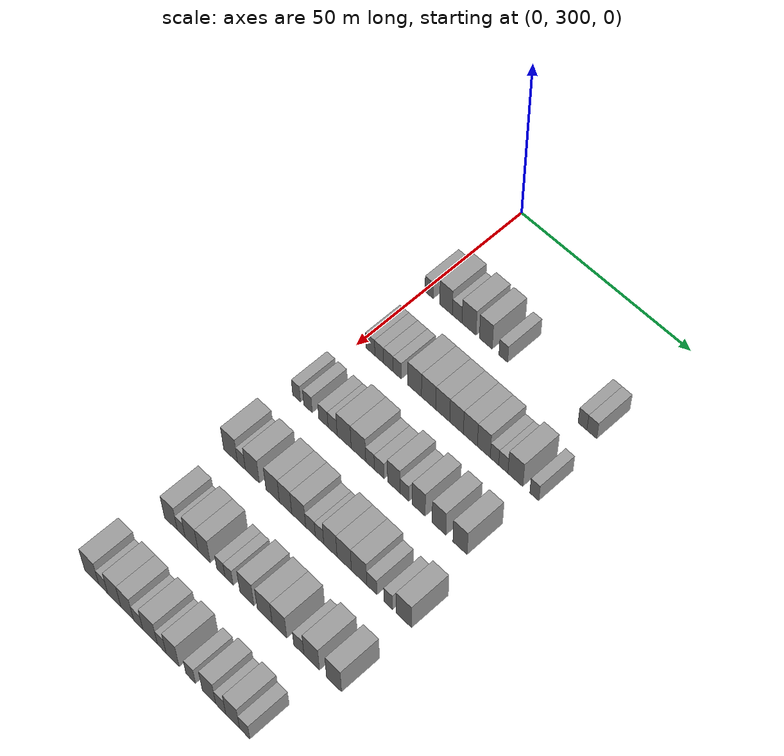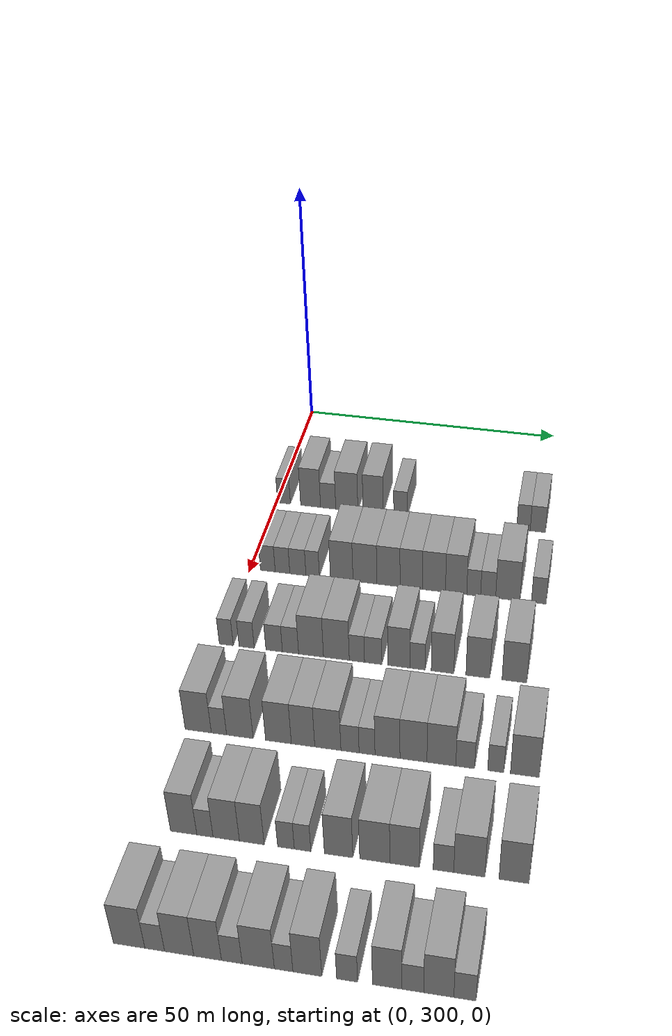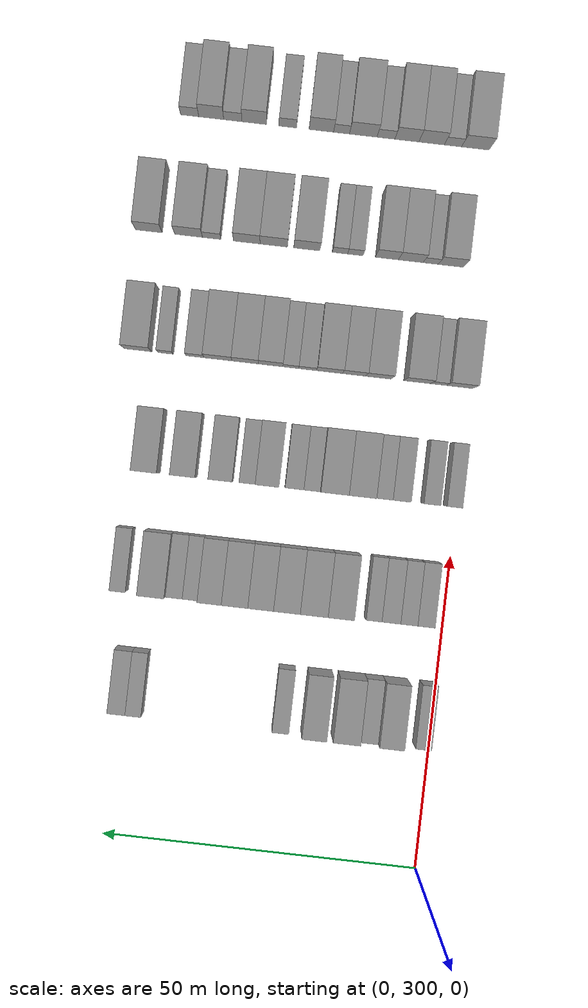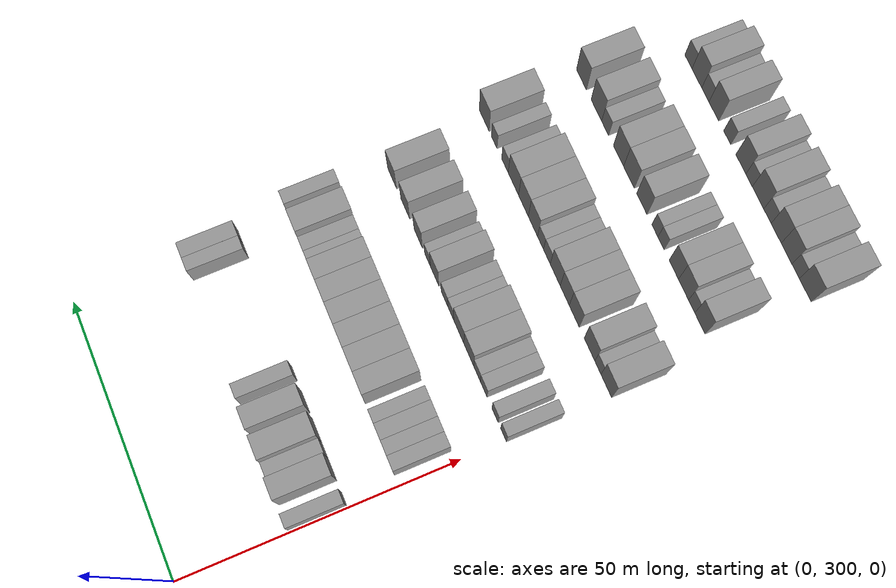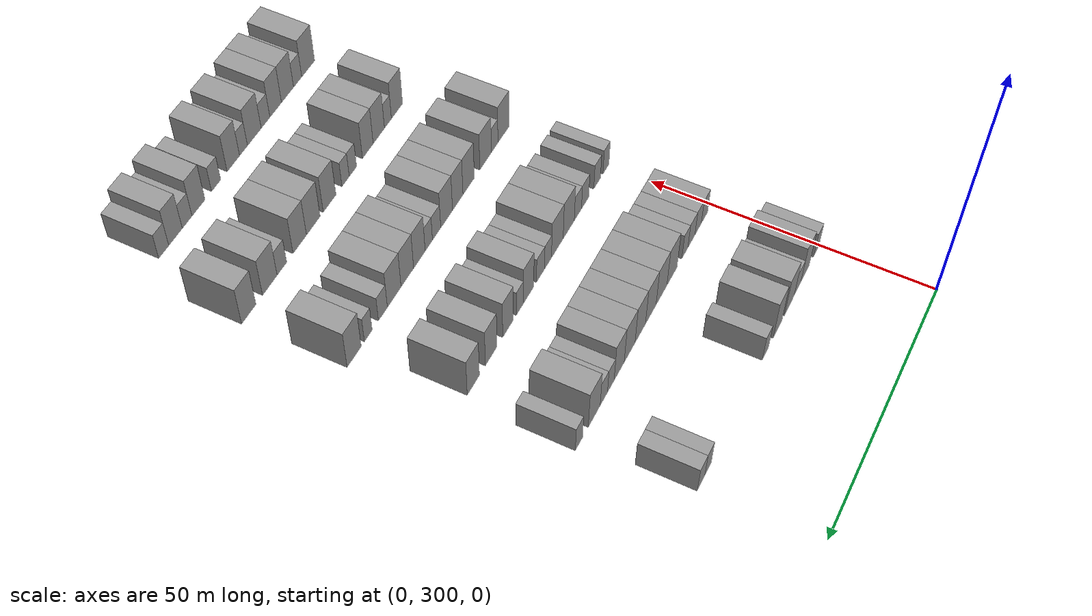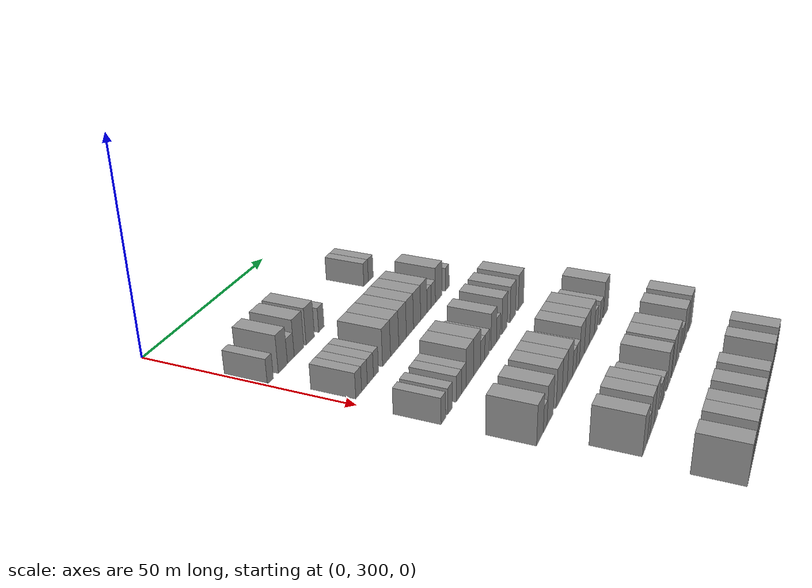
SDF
<sdf version="1.6">
 <world name="default">
  <model name="building_169">
   <static>1</static>
   <pose>25.0000 301.4806 0 0.000000 0.000000 0.000000</pose>
   <link name="link">
    <pose>0 0 3.00 0 0 0</pose>
    <collision name="collision"><geometry><box><size>10.0000 2.4826 6.0000</size></box></geometry></collision>
    <visual name="visual">
     <cast_shadows>0</cast_shadows>
     <geometry><box><size>10.0000 2.4826 6.0000</size></box></geometry>
     <material>
      <script>
       <uri>model://grey_wall/materials/scripts</uri>
       <uri>model://grey_wall/materials/textures</uri>
       <name>vrc/grey_wall</name>
      </script>
     </material>
    </visual>
   </link>
  </model>
  <model name="building_170">
   <static>1</static>
   <pose>25.0000 306.6456 0 0.000000 0.000000 0.000000</pose>
   <link name="link">
    <pose>0 0 4.50 0 0 0</pose>
    <collision name="collision"><geometry><box><size>10.0000 3.8474 9.0000</size></box></geometry></collision>
    <visual name="visual">
     <cast_shadows>0</cast_shadows>
     <geometry><box><size>10.0000 3.8474 9.0000</size></box></geometry>
     <material>
      <script>
       <uri>model://grey_wall/materials/scripts</uri>
       <uri>model://grey_wall/materials/textures</uri>
       <name>vrc/grey_wall</name>
      </script>
     </material>
    </visual>
   </link>
  </model>
  <model name="building_171">
   <static>1</static>
   <pose>25.0000 310.0331 0 0.000000 0.000000 0.000000</pose>
   <link name="link">
    <pose>0 0 3.00 0 0 0</pose>
    <collision name="collision"><geometry><box><size>10.0000 2.9275 6.0000</size></box></geometry></collision>
    <visual name="visual">
     <cast_shadows>0</cast_shadows>
     <geometry><box><size>10.0000 2.9275 6.0000</size></box></geometry>
     <material>
      <script>
       <uri>model://grey_wall/materials/scripts</uri>
       <uri>model://grey_wall/materials/textures</uri>
       <name>vrc/grey_wall</name>
      </script>
     </material>
    </visual>
   </link>
  </model>
  <model name="building_172">
   <static>1</static>
   <pose>25.0000 313.6250 0 0.000000 0.000000 0.000000</pose>
   <link name="link">
    <pose>0 0 4.50 0 0 0</pose>
    <collision name="collision"><geometry><box><size>10.0000 4.2563 9.0000</size></box></geometry></collision>
    <visual name="visual">
     <cast_shadows>0</cast_shadows>
     <geometry><box><size>10.0000 4.2563 9.0000</size></box></geometry>
     <material>
      <script>
       <uri>model://grey_wall/materials/scripts</uri>
       <uri>model://grey_wall/materials/textures</uri>
       <name>vrc/grey_wall</name>
      </script>
     </material>
    </visual>
   </link>
  </model>
  <model name="building_173">
   <static>1</static>
   <pose>25.0000 318.6779 0 0.000000 0.000000 0.000000</pose>
   <link name="link">
    <pose>0 0 4.50 0 0 0</pose>
    <collision name="collision"><geometry><box><size>10.0000 3.8495 9.0000</size></box></geometry></collision>
    <visual name="visual">
     <cast_shadows>0</cast_shadows>
     <geometry><box><size>10.0000 3.8495 9.0000</size></box></geometry>
     <material>
      <script>
       <uri>model://grey_wall/materials/scripts</uri>
       <uri>model://grey_wall/materials/textures</uri>
       <name>vrc/grey_wall</name>
      </script>
     </material>
    </visual>
   </link>
  </model>
  <model name="building_174">
   <static>1</static>
   <pose>25.0000 323.9062 0 0.000000 0.000000 0.000000</pose>
   <link name="link">
    <pose>0 0 3.00 0 0 0</pose>
    <collision name="collision"><geometry><box><size>10.0000 2.6072 6.0000</size></box></geometry></collision>
    <visual name="visual">
     <cast_shadows>0</cast_shadows>
     <geometry><box><size>10.0000 2.6072 6.0000</size></box></geometry>
     <material>
      <script>
       <uri>model://grey_wall/materials/scripts</uri>
       <uri>model://grey_wall/materials/textures</uri>
       <name>vrc/grey_wall</name>
      </script>
     </material>
    </visual>
   </link>
  </model>
  <model name="building_175">
   <static>1</static>
   <pose>25.0000 346.9584 0 0.000000 0.000000 0.000000</pose>
   <link name="link">
    <pose>0 0 3.00 0 0 0</pose>
    <collision name="collision"><geometry><box><size>10.0000 2.4990 6.0000</size></box></geometry></collision>
    <visual name="visual">
     <cast_shadows>0</cast_shadows>
     <geometry><box><size>10.0000 2.4990 6.0000</size></box></geometry>
     <material>
      <script>
       <uri>model://grey_wall/materials/scripts</uri>
       <uri>model://grey_wall/materials/textures</uri>
       <name>vrc/grey_wall</name>
      </script>
     </material>
    </visual>
   </link>
  </model>
  <model name="building_176">
   <static>1</static>
   <pose>25.0000 349.6196 0 0.000000 0.000000 0.000000</pose>
   <link name="link">
    <pose>0 0 3.00 0 0 0</pose>
    <collision name="collision"><geometry><box><size>10.0000 2.8233 6.0000</size></box></geometry></collision>
    <visual name="visual">
     <cast_shadows>0</cast_shadows>
     <geometry><box><size>10.0000 2.8233 6.0000</size></box></geometry>
     <material>
      <script>
       <uri>model://grey_wall/materials/scripts</uri>
       <uri>model://grey_wall/materials/textures</uri>
       <name>vrc/grey_wall</name>
      </script>
     </material>
    </visual>
   </link>
  </model>
  <model name="building_341">
   <static>1</static>
   <pose>44.0000 303.2255 0 0.000000 0.000000 0.000000</pose>
   <link name="link">
    <pose>0 0 3.00 0 0 0</pose>
    <collision name="collision"><geometry><box><size>10.0000 2.7075 6.0000</size></box></geometry></collision>
    <visual name="visual">
     <cast_shadows>0</cast_shadows>
     <geometry><box><size>10.0000 2.7075 6.0000</size></box></geometry>
     <material>
      <script>
       <uri>model://grey_wall/materials/scripts</uri>
       <uri>model://grey_wall/materials/textures</uri>
       <name>vrc/grey_wall</name>
      </script>
     </material>
    </visual>
   </link>
  </model>
  <model name="building_342">
   <static>1</static>
   <pose>44.0000 305.9161 0 0.000000 0.000000 0.000000</pose>
   <link name="link">
    <pose>0 0 3.00 0 0 0</pose>
    <collision name="collision"><geometry><box><size>10.0000 2.6736 6.0000</size></box></geometry></collision>
    <visual name="visual">
     <cast_shadows>0</cast_shadows>
     <geometry><box><size>10.0000 2.6736 6.0000</size></box></geometry>
     <material>
      <script>
       <uri>model://grey_wall/materials/scripts</uri>
       <uri>model://grey_wall/materials/textures</uri>
       <name>vrc/grey_wall</name>
      </script>
     </material>
    </visual>
   </link>
  </model>
  <model name="building_343">
   <static>1</static>
   <pose>44.0000 308.7205 0 0.000000 0.000000 0.000000</pose>
   <link name="link">
    <pose>0 0 3.00 0 0 0</pose>
    <collision name="collision"><geometry><box><size>10.0000 2.9352 6.0000</size></box></geometry></collision>
    <visual name="visual">
     <cast_shadows>0</cast_shadows>
     <geometry><box><size>10.0000 2.9352 6.0000</size></box></geometry>
     <material>
      <script>
       <uri>model://grey_wall/materials/scripts</uri>
       <uri>model://grey_wall/materials/textures</uri>
       <name>vrc/grey_wall</name>
      </script>
     </material>
    </visual>
   </link>
  </model>
  <model name="building_344">
   <static>1</static>
   <pose>44.0000 311.4164 0 0.000000 0.000000 0.000000</pose>
   <link name="link">
    <pose>0 0 3.00 0 0 0</pose>
    <collision name="collision"><geometry><box><size>10.0000 2.4567 6.0000</size></box></geometry></collision>
    <visual name="visual">
     <cast_shadows>0</cast_shadows>
     <geometry><box><size>10.0000 2.4567 6.0000</size></box></geometry>
     <material>
      <script>
       <uri>model://grey_wall/materials/scripts</uri>
       <uri>model://grey_wall/materials/textures</uri>
       <name>vrc/grey_wall</name>
      </script>
     </material>
    </visual>
   </link>
  </model>
  <model name="building_345">
   <static>1</static>
   <pose>44.0000 316.6854 0 0.000000 0.000000 0.000000</pose>
   <link name="link">
    <pose>0 0 4.50 0 0 0</pose>
    <collision name="collision"><geometry><box><size>10.0000 4.0813 9.0000</size></box></geometry></collision>
    <visual name="visual">
     <cast_shadows>0</cast_shadows>
     <geometry><box><size>10.0000 4.0813 9.0000</size></box></geometry>
     <material>
      <script>
       <uri>model://grey_wall/materials/scripts</uri>
       <uri>model://grey_wall/materials/textures</uri>
       <name>vrc/grey_wall</name>
      </script>
     </material>
    </visual>
   </link>
  </model>
  <model name="building_346">
   <static>1</static>
   <pose>44.0000 320.8776 0 0.000000 0.000000 0.000000</pose>
   <link name="link">
    <pose>0 0 4.50 0 0 0</pose>
    <collision name="collision"><geometry><box><size>10.0000 4.3031 9.0000</size></box></geometry></collision>
    <visual name="visual">
     <cast_shadows>0</cast_shadows>
     <geometry><box><size>10.0000 4.3031 9.0000</size></box></geometry>
     <material>
      <script>
       <uri>model://grey_wall/materials/scripts</uri>
       <uri>model://grey_wall/materials/textures</uri>
       <name>vrc/grey_wall</name>
      </script>
     </material>
    </visual>
   </link>
  </model>
  <model name="building_347">
   <static>1</static>
   <pose>44.0000 325.0958 0 0.000000 0.000000 0.000000</pose>
   <link name="link">
    <pose>0 0 4.50 0 0 0</pose>
    <collision name="collision"><geometry><box><size>10.0000 4.1332 9.0000</size></box></geometry></collision>
    <visual name="visual">
     <cast_shadows>0</cast_shadows>
     <geometry><box><size>10.0000 4.1332 9.0000</size></box></geometry>
     <material>
      <script>
       <uri>model://grey_wall/materials/scripts</uri>
       <uri>model://grey_wall/materials/textures</uri>
       <name>vrc/grey_wall</name>
      </script>
     </material>
    </visual>
   </link>
  </model>
  <model name="building_348">
   <static>1</static>
   <pose>44.0000 329.1545 0 0.000000 0.000000 0.000000</pose>
   <link name="link">
    <pose>0 0 4.50 0 0 0</pose>
    <collision name="collision"><geometry><box><size>10.0000 3.9843 9.0000</size></box></geometry></collision>
    <visual name="visual">
     <cast_shadows>0</cast_shadows>
     <geometry><box><size>10.0000 3.9843 9.0000</size></box></geometry>
     <material>
      <script>
       <uri>model://grey_wall/materials/scripts</uri>
       <uri>model://grey_wall/materials/textures</uri>
       <name>vrc/grey_wall</name>
      </script>
     </material>
    </visual>
   </link>
  </model>
  <model name="building_349">
   <static>1</static>
   <pose>44.0000 333.1925 0 0.000000 0.000000 0.000000</pose>
   <link name="link">
    <pose>0 0 4.50 0 0 0</pose>
    <collision name="collision"><geometry><box><size>10.0000 4.0915 9.0000</size></box></geometry></collision>
    <visual name="visual">
     <cast_shadows>0</cast_shadows>
     <geometry><box><size>10.0000 4.0915 9.0000</size></box></geometry>
     <material>
      <script>
       <uri>model://grey_wall/materials/scripts</uri>
       <uri>model://grey_wall/materials/textures</uri>
       <name>vrc/grey_wall</name>
      </script>
     </material>
    </visual>
   </link>
  </model>
  <model name="building_350">
   <static>1</static>
   <pose>44.0000 337.1166 0 0.000000 0.000000 0.000000</pose>
   <link name="link">
    <pose>0 0 4.50 0 0 0</pose>
    <collision name="collision"><geometry><box><size>10.0000 3.7567 9.0000</size></box></geometry></collision>
    <visual name="visual">
     <cast_shadows>0</cast_shadows>
     <geometry><box><size>10.0000 3.7567 9.0000</size></box></geometry>
     <material>
      <script>
       <uri>model://grey_wall/materials/scripts</uri>
       <uri>model://grey_wall/materials/textures</uri>
       <name>vrc/grey_wall</name>
      </script>
     </material>
    </visual>
   </link>
  </model>
  <model name="building_351">
   <static>1</static>
   <pose>44.0000 340.2146 0 0.000000 0.000000 0.000000</pose>
   <link name="link">
    <pose>0 0 3.00 0 0 0</pose>
    <collision name="collision"><geometry><box><size>10.0000 2.4395 6.0000</size></box></geometry></collision>
    <visual name="visual">
     <cast_shadows>0</cast_shadows>
     <geometry><box><size>10.0000 2.4395 6.0000</size></box></geometry>
     <material>
      <script>
       <uri>model://grey_wall/materials/scripts</uri>
       <uri>model://grey_wall/materials/textures</uri>
       <name>vrc/grey_wall</name>
      </script>
     </material>
    </visual>
   </link>
  </model>
  <model name="building_352">
   <static>1</static>
   <pose>44.0000 342.7566 0 0.000000 0.000000 0.000000</pose>
   <link name="link">
    <pose>0 0 3.00 0 0 0</pose>
    <collision name="collision"><geometry><box><size>10.0000 2.6445 6.0000</size></box></geometry></collision>
    <visual name="visual">
     <cast_shadows>0</cast_shadows>
     <geometry><box><size>10.0000 2.6445 6.0000</size></box></geometry>
     <material>
      <script>
       <uri>model://grey_wall/materials/scripts</uri>
       <uri>model://grey_wall/materials/textures</uri>
       <name>vrc/grey_wall</name>
      </script>
     </material>
    </visual>
   </link>
  </model>
  <model name="building_353">
   <static>1</static>
   <pose>44.0000 346.2053 0 0.000000 0.000000 0.000000</pose>
   <link name="link">
    <pose>0 0 4.50 0 0 0</pose>
    <collision name="collision"><geometry><box><size>10.0000 4.2528 9.0000</size></box></geometry></collision>
    <visual name="visual">
     <cast_shadows>0</cast_shadows>
     <geometry><box><size>10.0000 4.2528 9.0000</size></box></geometry>
     <material>
      <script>
       <uri>model://grey_wall/materials/scripts</uri>
       <uri>model://grey_wall/materials/textures</uri>
       <name>vrc/grey_wall</name>
      </script>
     </material>
    </visual>
   </link>
  </model>
  <model name="building_354">
   <static>1</static>
   <pose>44.0000 351.6042 0 0.000000 0.000000 0.000000</pose>
   <link name="link">
    <pose>0 0 3.00 0 0 0</pose>
    <collision name="collision"><geometry><box><size>10.0000 2.5450 6.0000</size></box></geometry></collision>
    <visual name="visual">
     <cast_shadows>0</cast_shadows>
     <geometry><box><size>10.0000 2.5450 6.0000</size></box></geometry>
     <material>
      <script>
       <uri>model://grey_wall/materials/scripts</uri>
       <uri>model://grey_wall/materials/textures</uri>
       <name>vrc/grey_wall</name>
      </script>
     </material>
    </visual>
   </link>
  </model>
  <model name="building_514">
   <static>1</static>
   <pose>63.0000 300.9514 0 0.000000 0.000000 0.000000</pose>
   <link name="link">
    <pose>0 0 3.00 0 0 0</pose>
    <collision name="collision"><geometry><box><size>10.0000 2.4220 6.0000</size></box></geometry></collision>
    <visual name="visual">
     <cast_shadows>0</cast_shadows>
     <geometry><box><size>10.0000 2.4220 6.0000</size></box></geometry>
     <material>
      <script>
       <uri>model://grey_wall/materials/scripts</uri>
       <uri>model://grey_wall/materials/textures</uri>
       <name>vrc/grey_wall</name>
      </script>
     </material>
    </visual>
   </link>
  </model>
  <model name="building_515">
   <static>1</static>
   <pose>63.0000 304.4737 0 0.000000 0.000000 0.000000</pose>
   <link name="link">
    <pose>0 0 3.00 0 0 0</pose>
    <collision name="collision"><geometry><box><size>10.0000 2.6225 6.0000</size></box></geometry></collision>
    <visual name="visual">
     <cast_shadows>0</cast_shadows>
     <geometry><box><size>10.0000 2.6225 6.0000</size></box></geometry>
     <material>
      <script>
       <uri>model://grey_wall/materials/scripts</uri>
       <uri>model://grey_wall/materials/textures</uri>
       <name>vrc/grey_wall</name>
      </script>
     </material>
    </visual>
   </link>
  </model>
  <model name="building_516">
   <static>1</static>
   <pose>63.0000 309.2012 0 0.000000 0.000000 0.000000</pose>
   <link name="link">
    <pose>0 0 3.00 0 0 0</pose>
    <collision name="collision"><geometry><box><size>10.0000 2.8326 6.0000</size></box></geometry></collision>
    <visual name="visual">
     <cast_shadows>0</cast_shadows>
     <geometry><box><size>10.0000 2.8326 6.0000</size></box></geometry>
     <material>
      <script>
       <uri>model://grey_wall/materials/scripts</uri>
       <uri>model://grey_wall/materials/textures</uri>
       <name>vrc/grey_wall</name>
      </script>
     </material>
    </visual>
   </link>
  </model>
  <model name="building_517">
   <static>1</static>
   <pose>63.0000 312.0038 0 0.000000 0.000000 0.000000</pose>
   <link name="link">
    <pose>0 0 3.00 0 0 0</pose>
    <collision name="collision"><geometry><box><size>10.0000 2.7726 6.0000</size></box></geometry></collision>
    <visual name="visual">
     <cast_shadows>0</cast_shadows>
     <geometry><box><size>10.0000 2.7726 6.0000</size></box></geometry>
     <material>
      <script>
       <uri>model://grey_wall/materials/scripts</uri>
       <uri>model://grey_wall/materials/textures</uri>
       <name>vrc/grey_wall</name>
      </script>
     </material>
    </visual>
   </link>
  </model>
  <model name="building_518">
   <static>1</static>
   <pose>63.0000 315.5112 0 0.000000 0.000000 0.000000</pose>
   <link name="link">
    <pose>0 0 4.50 0 0 0</pose>
    <collision name="collision"><geometry><box><size>10.0000 4.2421 9.0000</size></box></geometry></collision>
    <visual name="visual">
     <cast_shadows>0</cast_shadows>
     <geometry><box><size>10.0000 4.2421 9.0000</size></box></geometry>
     <material>
      <script>
       <uri>model://grey_wall/materials/scripts</uri>
       <uri>model://grey_wall/materials/textures</uri>
       <name>vrc/grey_wall</name>
      </script>
     </material>
    </visual>
   </link>
  </model>
  <model name="building_519">
   <static>1</static>
   <pose>63.0000 319.8176 0 0.000000 0.000000 0.000000</pose>
   <link name="link">
    <pose>0 0 4.50 0 0 0</pose>
    <collision name="collision"><geometry><box><size>10.0000 4.3706 9.0000</size></box></geometry></collision>
    <visual name="visual">
     <cast_shadows>0</cast_shadows>
     <geometry><box><size>10.0000 4.3706 9.0000</size></box></geometry>
     <material>
      <script>
       <uri>model://grey_wall/materials/scripts</uri>
       <uri>model://grey_wall/materials/textures</uri>
       <name>vrc/grey_wall</name>
      </script>
     </material>
    </visual>
   </link>
  </model>
  <model name="building_520">
   <static>1</static>
   <pose>63.0000 323.2861 0 0.000000 0.000000 0.000000</pose>
   <link name="link">
    <pose>0 0 3.00 0 0 0</pose>
    <collision name="collision"><geometry><box><size>10.0000 2.5665 6.0000</size></box></geometry></collision>
    <visual name="visual">
     <cast_shadows>0</cast_shadows>
     <geometry><box><size>10.0000 2.5665 6.0000</size></box></geometry>
     <material>
      <script>
       <uri>model://grey_wall/materials/scripts</uri>
       <uri>model://grey_wall/materials/textures</uri>
       <name>vrc/grey_wall</name>
      </script>
     </material>
    </visual>
   </link>
  </model>
  <model name="building_521">
   <static>1</static>
   <pose>63.0000 326.0339 0 0.000000 0.000000 0.000000</pose>
   <link name="link">
    <pose>0 0 3.00 0 0 0</pose>
    <collision name="collision"><geometry><box><size>10.0000 2.9292 6.0000</size></box></geometry></collision>
    <visual name="visual">
     <cast_shadows>0</cast_shadows>
     <geometry><box><size>10.0000 2.9292 6.0000</size></box></geometry>
     <material>
      <script>
       <uri>model://grey_wall/materials/scripts</uri>
       <uri>model://grey_wall/materials/textures</uri>
       <name>vrc/grey_wall</name>
      </script>
     </material>
    </visual>
   </link>
  </model>
  <model name="building_522">
   <static>1</static>
   <pose>63.0000 330.3367 0 0.000000 0.000000 0.000000</pose>
   <link name="link">
    <pose>0 0 4.50 0 0 0</pose>
    <collision name="collision"><geometry><box><size>10.0000 3.6764 9.0000</size></box></geometry></collision>
    <visual name="visual">
     <cast_shadows>0</cast_shadows>
     <geometry><box><size>10.0000 3.6764 9.0000</size></box></geometry>
     <material>
      <script>
       <uri>model://grey_wall/materials/scripts</uri>
       <uri>model://grey_wall/materials/textures</uri>
       <name>vrc/grey_wall</name>
      </script>
     </material>
    </visual>
   </link>
  </model>
  <model name="building_523">
   <static>1</static>
   <pose>63.0000 333.4541 0 0.000000 0.000000 0.000000</pose>
   <link name="link">
    <pose>0 0 3.00 0 0 0</pose>
    <collision name="collision"><geometry><box><size>10.0000 2.5583 6.0000</size></box></geometry></collision>
    <visual name="visual">
     <cast_shadows>0</cast_shadows>
     <geometry><box><size>10.0000 2.5583 6.0000</size></box></geometry>
     <material>
      <script>
       <uri>model://grey_wall/materials/scripts</uri>
       <uri>model://grey_wall/materials/textures</uri>
       <name>vrc/grey_wall</name>
      </script>
     </material>
    </visual>
   </link>
  </model>
  <model name="building_524">
   <static>1</static>
   <pose>63.0000 337.6069 0 0.000000 0.000000 0.000000</pose>
   <link name="link">
    <pose>0 0 4.50 0 0 0</pose>
    <collision name="collision"><geometry><box><size>10.0000 3.7473 9.0000</size></box></geometry></collision>
    <visual name="visual">
     <cast_shadows>0</cast_shadows>
     <geometry><box><size>10.0000 3.7473 9.0000</size></box></geometry>
     <material>
      <script>
       <uri>model://grey_wall/materials/scripts</uri>
       <uri>model://grey_wall/materials/textures</uri>
       <name>vrc/grey_wall</name>
      </script>
     </material>
    </visual>
   </link>
  </model>
  <model name="building_525">
   <static>1</static>
   <pose>63.0000 343.4507 0 0.000000 0.000000 0.000000</pose>
   <link name="link">
    <pose>0 0 4.50 0 0 0</pose>
    <collision name="collision"><geometry><box><size>10.0000 3.9404 9.0000</size></box></geometry></collision>
    <visual name="visual">
     <cast_shadows>0</cast_shadows>
     <geometry><box><size>10.0000 3.9404 9.0000</size></box></geometry>
     <material>
      <script>
       <uri>model://grey_wall/materials/scripts</uri>
       <uri>model://grey_wall/materials/textures</uri>
       <name>vrc/grey_wall</name>
      </script>
     </material>
    </visual>
   </link>
  </model>
  <model name="building_526">
   <static>1</static>
   <pose>63.0000 349.4494 0 0.000000 0.000000 0.000000</pose>
   <link name="link">
    <pose>0 0 4.50 0 0 0</pose>
    <collision name="collision"><geometry><box><size>10.0000 4.0569 9.0000</size></box></geometry></collision>
    <visual name="visual">
     <cast_shadows>0</cast_shadows>
     <geometry><box><size>10.0000 4.0569 9.0000</size></box></geometry>
     <material>
      <script>
       <uri>model://grey_wall/materials/scripts</uri>
       <uri>model://grey_wall/materials/textures</uri>
       <name>vrc/grey_wall</name>
      </script>
     </material>
    </visual>
   </link>
  </model>
  <model name="building_690">
   <static>1</static>
   <pose>82.0000 301.7825 0 0.000000 0.000000 0.000000</pose>
   <link name="link">
    <pose>0 0 4.50 0 0 0</pose>
    <collision name="collision"><geometry><box><size>10.0000 4.2484 9.0000</size></box></geometry></collision>
    <visual name="visual">
     <cast_shadows>0</cast_shadows>
     <geometry><box><size>10.0000 4.2484 9.0000</size></box></geometry>
     <material>
      <script>
       <uri>model://grey_wall/materials/scripts</uri>
       <uri>model://grey_wall/materials/textures</uri>
       <name>vrc/grey_wall</name>
      </script>
     </material>
    </visual>
   </link>
  </model>
  <model name="building_691">
   <static>1</static>
   <pose>82.0000 305.1392 0 0.000000 0.000000 0.000000</pose>
   <link name="link">
    <pose>0 0 3.00 0 0 0</pose>
    <collision name="collision"><geometry><box><size>10.0000 2.4652 6.0000</size></box></geometry></collision>
    <visual name="visual">
     <cast_shadows>0</cast_shadows>
     <geometry><box><size>10.0000 2.4652 6.0000</size></box></geometry>
     <material>
      <script>
       <uri>model://grey_wall/materials/scripts</uri>
       <uri>model://grey_wall/materials/textures</uri>
       <name>vrc/grey_wall</name>
      </script>
     </material>
    </visual>
   </link>
  </model>
  <model name="building_692">
   <static>1</static>
   <pose>82.0000 308.5110 0 0.000000 0.000000 0.000000</pose>
   <link name="link">
    <pose>0 0 4.50 0 0 0</pose>
    <collision name="collision"><geometry><box><size>10.0000 4.2784 9.0000</size></box></geometry></collision>
    <visual name="visual">
     <cast_shadows>0</cast_shadows>
     <geometry><box><size>10.0000 4.2784 9.0000</size></box></geometry>
     <material>
      <script>
       <uri>model://grey_wall/materials/scripts</uri>
       <uri>model://grey_wall/materials/textures</uri>
       <name>vrc/grey_wall</name>
      </script>
     </material>
    </visual>
   </link>
  </model>
  <model name="building_693">
   <static>1</static>
   <pose>82.0000 314.7091 0 0.000000 0.000000 0.000000</pose>
   <link name="link">
    <pose>0 0 4.50 0 0 0</pose>
    <collision name="collision"><geometry><box><size>10.0000 4.1179 9.0000</size></box></geometry></collision>
    <visual name="visual">
     <cast_shadows>0</cast_shadows>
     <geometry><box><size>10.0000 4.1179 9.0000</size></box></geometry>
     <material>
      <script>
       <uri>model://grey_wall/materials/scripts</uri>
       <uri>model://grey_wall/materials/textures</uri>
       <name>vrc/grey_wall</name>
      </script>
     </material>
    </visual>
   </link>
  </model>
  <model name="building_694">
   <static>1</static>
   <pose>82.0000 318.6289 0 0.000000 0.000000 0.000000</pose>
   <link name="link">
    <pose>0 0 4.50 0 0 0</pose>
    <collision name="collision"><geometry><box><size>10.0000 3.7218 9.0000</size></box></geometry></collision>
    <visual name="visual">
     <cast_shadows>0</cast_shadows>
     <geometry><box><size>10.0000 3.7218 9.0000</size></box></geometry>
     <material>
      <script>
       <uri>model://grey_wall/materials/scripts</uri>
       <uri>model://grey_wall/materials/textures</uri>
       <name>vrc/grey_wall</name>
      </script>
     </material>
    </visual>
   </link>
  </model>
  <model name="building_695">
   <static>1</static>
   <pose>82.0000 322.5590 0 0.000000 0.000000 0.000000</pose>
   <link name="link">
    <pose>0 0 4.50 0 0 0</pose>
    <collision name="collision"><geometry><box><size>10.0000 4.1383 9.0000</size></box></geometry></collision>
    <visual name="visual">
     <cast_shadows>0</cast_shadows>
     <geometry><box><size>10.0000 4.1383 9.0000</size></box></geometry>
     <material>
      <script>
       <uri>model://grey_wall/materials/scripts</uri>
       <uri>model://grey_wall/materials/textures</uri>
       <name>vrc/grey_wall</name>
      </script>
     </material>
    </visual>
   </link>
  </model>
  <model name="building_696">
   <static>1</static>
   <pose>82.0000 326.0589 0 0.000000 0.000000 0.000000</pose>
   <link name="link">
    <pose>0 0 3.00 0 0 0</pose>
    <collision name="collision"><geometry><box><size>10.0000 2.8615 6.0000</size></box></geometry></collision>
    <visual name="visual">
     <cast_shadows>0</cast_shadows>
     <geometry><box><size>10.0000 2.8615 6.0000</size></box></geometry>
     <material>
      <script>
       <uri>model://grey_wall/materials/scripts</uri>
       <uri>model://grey_wall/materials/textures</uri>
       <name>vrc/grey_wall</name>
      </script>
     </material>
    </visual>
   </link>
  </model>
  <model name="building_697">
   <static>1</static>
   <pose>82.0000 328.7392 0 0.000000 0.000000 0.000000</pose>
   <link name="link">
    <pose>0 0 3.00 0 0 0</pose>
    <collision name="collision"><geometry><box><size>10.0000 2.4992 6.0000</size></box></geometry></collision>
    <visual name="visual">
     <cast_shadows>0</cast_shadows>
     <geometry><box><size>10.0000 2.4992 6.0000</size></box></geometry>
     <material>
      <script>
       <uri>model://grey_wall/materials/scripts</uri>
       <uri>model://grey_wall/materials/textures</uri>
       <name>vrc/grey_wall</name>
      </script>
     </material>
    </visual>
   </link>
  </model>
  <model name="building_698">
   <static>1</static>
   <pose>82.0000 331.9402 0 0.000000 0.000000 0.000000</pose>
   <link name="link">
    <pose>0 0 4.50 0 0 0</pose>
    <collision name="collision"><geometry><box><size>10.0000 3.9028 9.0000</size></box></geometry></collision>
    <visual name="visual">
     <cast_shadows>0</cast_shadows>
     <geometry><box><size>10.0000 3.9028 9.0000</size></box></geometry>
     <material>
      <script>
       <uri>model://grey_wall/materials/scripts</uri>
       <uri>model://grey_wall/materials/textures</uri>
       <name>vrc/grey_wall</name>
      </script>
     </material>
    </visual>
   </link>
  </model>
  <model name="building_699">
   <static>1</static>
   <pose>82.0000 335.9878 0 0.000000 0.000000 0.000000</pose>
   <link name="link">
    <pose>0 0 4.50 0 0 0</pose>
    <collision name="collision"><geometry><box><size>10.0000 4.1924 9.0000</size></box></geometry></collision>
    <visual name="visual">
     <cast_shadows>0</cast_shadows>
     <geometry><box><size>10.0000 4.1924 9.0000</size></box></geometry>
     <material>
      <script>
       <uri>model://grey_wall/materials/scripts</uri>
       <uri>model://grey_wall/materials/textures</uri>
       <name>vrc/grey_wall</name>
      </script>
     </material>
    </visual>
   </link>
  </model>
  <model name="building_700">
   <static>1</static>
   <pose>82.0000 340.3200 0 0.000000 0.000000 0.000000</pose>
   <link name="link">
    <pose>0 0 4.50 0 0 0</pose>
    <collision name="collision"><geometry><box><size>10.0000 4.4720 9.0000</size></box></geometry></collision>
    <visual name="visual">
     <cast_shadows>0</cast_shadows>
     <geometry><box><size>10.0000 4.4720 9.0000</size></box></geometry>
     <material>
      <script>
       <uri>model://grey_wall/materials/scripts</uri>
       <uri>model://grey_wall/materials/textures</uri>
       <name>vrc/grey_wall</name>
      </script>
     </material>
    </visual>
   </link>
  </model>
  <model name="building_701">
   <static>1</static>
   <pose>82.0000 344.0036 0 0.000000 0.000000 0.000000</pose>
   <link name="link">
    <pose>0 0 3.00 0 0 0</pose>
    <collision name="collision"><geometry><box><size>10.0000 2.8953 6.0000</size></box></geometry></collision>
    <visual name="visual">
     <cast_shadows>0</cast_shadows>
     <geometry><box><size>10.0000 2.8953 6.0000</size></box></geometry>
     <material>
      <script>
       <uri>model://grey_wall/materials/scripts</uri>
       <uri>model://grey_wall/materials/textures</uri>
       <name>vrc/grey_wall</name>
      </script>
     </material>
    </visual>
   </link>
  </model>
  <model name="building_702">
   <static>1</static>
   <pose>82.0000 348.6849 0 0.000000 0.000000 0.000000</pose>
   <link name="link">
    <pose>0 0 3.00 0 0 0</pose>
    <collision name="collision"><geometry><box><size>10.0000 2.4675 6.0000</size></box></geometry></collision>
    <visual name="visual">
     <cast_shadows>0</cast_shadows>
     <geometry><box><size>10.0000 2.4675 6.0000</size></box></geometry>
     <material>
      <script>
       <uri>model://grey_wall/materials/scripts</uri>
       <uri>model://grey_wall/materials/textures</uri>
       <name>vrc/grey_wall</name>
      </script>
     </material>
    </visual>
   </link>
  </model>
  <model name="building_703">
   <static>1</static>
   <pose>82.0000 353.1127 0 0.000000 0.000000 0.000000</pose>
   <link name="link">
    <pose>0 0 4.50 0 0 0</pose>
    <collision name="collision"><geometry><box><size>10.0000 4.3880 9.0000</size></box></geometry></collision>
    <visual name="visual">
     <cast_shadows>0</cast_shadows>
     <geometry><box><size>10.0000 4.3880 9.0000</size></box></geometry>
     <material>
      <script>
       <uri>model://grey_wall/materials/scripts</uri>
       <uri>model://grey_wall/materials/textures</uri>
       <name>vrc/grey_wall</name>
      </script>
     </material>
    </visual>
   </link>
  </model>
  <model name="building_865">
   <static>1</static>
   <pose>101.0000 305.2949 0 0.000000 0.000000 0.000000</pose>
   <link name="link">
    <pose>0 0 4.50 0 0 0</pose>
    <collision name="collision"><geometry><box><size>10.0000 3.9660 9.0000</size></box></geometry></collision>
    <visual name="visual">
     <cast_shadows>0</cast_shadows>
     <geometry><box><size>10.0000 3.9660 9.0000</size></box></geometry>
     <material>
      <script>
       <uri>model://grey_wall/materials/scripts</uri>
       <uri>model://grey_wall/materials/textures</uri>
       <name>vrc/grey_wall</name>
      </script>
     </material>
    </visual>
   </link>
  </model>
  <model name="building_866">
   <static>1</static>
   <pose>101.0000 308.4993 0 0.000000 0.000000 0.000000</pose>
   <link name="link">
    <pose>0 0 3.00 0 0 0</pose>
    <collision name="collision"><geometry><box><size>10.0000 2.4429 6.0000</size></box></geometry></collision>
    <visual name="visual">
     <cast_shadows>0</cast_shadows>
     <geometry><box><size>10.0000 2.4429 6.0000</size></box></geometry>
     <material>
      <script>
       <uri>model://grey_wall/materials/scripts</uri>
       <uri>model://grey_wall/materials/textures</uri>
       <name>vrc/grey_wall</name>
      </script>
     </material>
    </visual>
   </link>
  </model>
  <model name="building_867">
   <static>1</static>
   <pose>101.0000 311.6948 0 0.000000 0.000000 0.000000</pose>
   <link name="link">
    <pose>0 0 4.50 0 0 0</pose>
    <collision name="collision"><geometry><box><size>10.0000 3.9481 9.0000</size></box></geometry></collision>
    <visual name="visual">
     <cast_shadows>0</cast_shadows>
     <geometry><box><size>10.0000 3.9481 9.0000</size></box></geometry>
     <material>
      <script>
       <uri>model://grey_wall/materials/scripts</uri>
       <uri>model://grey_wall/materials/textures</uri>
       <name>vrc/grey_wall</name>
      </script>
     </material>
    </visual>
   </link>
  </model>
  <model name="building_868">
   <static>1</static>
   <pose>101.0000 315.5137 0 0.000000 0.000000 0.000000</pose>
   <link name="link">
    <pose>0 0 4.50 0 0 0</pose>
    <collision name="collision"><geometry><box><size>10.0000 3.6896 9.0000</size></box></geometry></collision>
    <visual name="visual">
     <cast_shadows>0</cast_shadows>
     <geometry><box><size>10.0000 3.6896 9.0000</size></box></geometry>
     <material>
      <script>
       <uri>model://grey_wall/materials/scripts</uri>
       <uri>model://grey_wall/materials/textures</uri>
       <name>vrc/grey_wall</name>
      </script>
     </material>
    </visual>
   </link>
  </model>
  <model name="building_869">
   <static>1</static>
   <pose>101.0000 320.5913 0 0.000000 0.000000 0.000000</pose>
   <link name="link">
    <pose>0 0 3.00 0 0 0</pose>
    <collision name="collision"><geometry><box><size>10.0000 2.4656 6.0000</size></box></geometry></collision>
    <visual name="visual">
     <cast_shadows>0</cast_shadows>
     <geometry><box><size>10.0000 2.4656 6.0000</size></box></geometry>
     <material>
      <script>
       <uri>model://grey_wall/materials/scripts</uri>
       <uri>model://grey_wall/materials/textures</uri>
       <name>vrc/grey_wall</name>
      </script>
     </material>
    </visual>
   </link>
  </model>
  <model name="building_870">
   <static>1</static>
   <pose>101.0000 323.0404 0 0.000000 0.000000 0.000000</pose>
   <link name="link">
    <pose>0 0 3.00 0 0 0</pose>
    <collision name="collision"><geometry><box><size>10.0000 2.4327 6.0000</size></box></geometry></collision>
    <visual name="visual">
     <cast_shadows>0</cast_shadows>
     <geometry><box><size>10.0000 2.4327 6.0000</size></box></geometry>
     <material>
      <script>
       <uri>model://grey_wall/materials/scripts</uri>
       <uri>model://grey_wall/materials/textures</uri>
       <name>vrc/grey_wall</name>
      </script>
     </material>
    </visual>
   </link>
  </model>
  <model name="building_871">
   <static>1</static>
   <pose>101.0000 328.3406 0 0.000000 0.000000 0.000000</pose>
   <link name="link">
    <pose>0 0 4.50 0 0 0</pose>
    <collision name="collision"><geometry><box><size>10.0000 4.1677 9.0000</size></box></geometry></collision>
    <visual name="visual">
     <cast_shadows>0</cast_shadows>
     <geometry><box><size>10.0000 4.1677 9.0000</size></box></geometry>
     <material>
      <script>
       <uri>model://grey_wall/materials/scripts</uri>
       <uri>model://grey_wall/materials/textures</uri>
       <name>vrc/grey_wall</name>
      </script>
     </material>
    </visual>
   </link>
  </model>
  <model name="building_872">
   <static>1</static>
   <pose>101.0000 333.6162 0 0.000000 0.000000 0.000000</pose>
   <link name="link">
    <pose>0 0 4.50 0 0 0</pose>
    <collision name="collision"><geometry><box><size>10.0000 4.3835 9.0000</size></box></geometry></collision>
    <visual name="visual">
     <cast_shadows>0</cast_shadows>
     <geometry><box><size>10.0000 4.3835 9.0000</size></box></geometry>
     <material>
      <script>
       <uri>model://grey_wall/materials/scripts</uri>
       <uri>model://grey_wall/materials/textures</uri>
       <name>vrc/grey_wall</name>
      </script>
     </material>
    </visual>
   </link>
  </model>
  <model name="building_873">
   <static>1</static>
   <pose>101.0000 337.9310 0 0.000000 0.000000 0.000000</pose>
   <link name="link">
    <pose>0 0 4.50 0 0 0</pose>
    <collision name="collision"><geometry><box><size>10.0000 4.2460 9.0000</size></box></geometry></collision>
    <visual name="visual">
     <cast_shadows>0</cast_shadows>
     <geometry><box><size>10.0000 4.2460 9.0000</size></box></geometry>
     <material>
      <script>
       <uri>model://grey_wall/materials/scripts</uri>
       <uri>model://grey_wall/materials/textures</uri>
       <name>vrc/grey_wall</name>
      </script>
     </material>
    </visual>
   </link>
  </model>
  <model name="building_874">
   <static>1</static>
   <pose>101.0000 343.5256 0 0.000000 0.000000 0.000000</pose>
   <link name="link">
    <pose>0 0 3.00 0 0 0</pose>
    <collision name="collision"><geometry><box><size>10.0000 2.9433 6.0000</size></box></geometry></collision>
    <visual name="visual">
     <cast_shadows>0</cast_shadows>
     <geometry><box><size>10.0000 2.9433 6.0000</size></box></geometry>
     <material>
      <script>
       <uri>model://grey_wall/materials/scripts</uri>
       <uri>model://grey_wall/materials/textures</uri>
       <name>vrc/grey_wall</name>
      </script>
     </material>
    </visual>
   </link>
  </model>
  <model name="building_875">
   <static>1</static>
   <pose>101.0000 347.2171 0 0.000000 0.000000 0.000000</pose>
   <link name="link">
    <pose>0 0 4.50 0 0 0</pose>
    <collision name="collision"><geometry><box><size>10.0000 4.4397 9.0000</size></box></geometry></collision>
    <visual name="visual">
     <cast_shadows>0</cast_shadows>
     <geometry><box><size>10.0000 4.4397 9.0000</size></box></geometry>
     <material>
      <script>
       <uri>model://grey_wall/materials/scripts</uri>
       <uri>model://grey_wall/materials/textures</uri>
       <name>vrc/grey_wall</name>
      </script>
     </material>
    </visual>
   </link>
  </model>
  <model name="building_876">
   <static>1</static>
   <pose>101.0000 353.5612 0 0.000000 0.000000 0.000000</pose>
   <link name="link">
    <pose>0 0 4.50 0 0 0</pose>
    <collision name="collision"><geometry><box><size>10.0000 4.2484 9.0000</size></box></geometry></collision>
    <visual name="visual">
     <cast_shadows>0</cast_shadows>
     <geometry><box><size>10.0000 4.2484 9.0000</size></box></geometry>
     <material>
      <script>
       <uri>model://grey_wall/materials/scripts</uri>
       <uri>model://grey_wall/materials/textures</uri>
       <name>vrc/grey_wall</name>
      </script>
     </material>
    </visual>
   </link>
  </model>
  <model name="building_1036">
   <static>1</static>
   <pose>120.0000 303.5367 0 0.000000 0.000000 0.000000</pose>
   <link name="link">
    <pose>0 0 4.50 0 0 0</pose>
    <collision name="collision"><geometry><box><size>10.0000 4.4349 9.0000</size></box></geometry></collision>
    <visual name="visual">
     <cast_shadows>0</cast_shadows>
     <geometry><box><size>10.0000 4.4349 9.0000</size></box></geometry>
     <material>
      <script>
       <uri>model://grey_wall/materials/scripts</uri>
       <uri>model://grey_wall/materials/textures</uri>
       <name>vrc/grey_wall</name>
      </script>
     </material>
    </visual>
   </link>
  </model>
  <model name="building_1037">
   <static>1</static>
   <pose>120.0000 307.1360 0 0.000000 0.000000 0.000000</pose>
   <link name="link">
    <pose>0 0 3.00 0 0 0</pose>
    <collision name="collision"><geometry><box><size>10.0000 2.7639 6.0000</size></box></geometry></collision>
    <visual name="visual">
     <cast_shadows>0</cast_shadows>
     <geometry><box><size>10.0000 2.7639 6.0000</size></box></geometry>
     <material>
      <script>
       <uri>model://grey_wall/materials/scripts</uri>
       <uri>model://grey_wall/materials/textures</uri>
       <name>vrc/grey_wall</name>
      </script>
     </material>
    </visual>
   </link>
  </model>
  <model name="building_1038">
   <static>1</static>
   <pose>120.0000 310.5487 0 0.000000 0.000000 0.000000</pose>
   <link name="link">
    <pose>0 0 4.50 0 0 0</pose>
    <collision name="collision"><geometry><box><size>10.0000 4.0615 9.0000</size></box></geometry></collision>
    <visual name="visual">
     <cast_shadows>0</cast_shadows>
     <geometry><box><size>10.0000 4.0615 9.0000</size></box></geometry>
     <material>
      <script>
       <uri>model://grey_wall/materials/scripts</uri>
       <uri>model://grey_wall/materials/textures</uri>
       <name>vrc/grey_wall</name>
      </script>
     </material>
    </visual>
   </link>
  </model>
  <model name="building_1039">
   <static>1</static>
   <pose>120.0000 314.5030 0 0.000000 0.000000 0.000000</pose>
   <link name="link">
    <pose>0 0 4.50 0 0 0</pose>
    <collision name="collision"><geometry><box><size>10.0000 3.8472 9.0000</size></box></geometry></collision>
    <visual name="visual">
     <cast_shadows>0</cast_shadows>
     <geometry><box><size>10.0000 3.8472 9.0000</size></box></geometry>
     <material>
      <script>
       <uri>model://grey_wall/materials/scripts</uri>
       <uri>model://grey_wall/materials/textures</uri>
       <name>vrc/grey_wall</name>
      </script>
     </material>
    </visual>
   </link>
  </model>
  <model name="building_1040">
   <static>1</static>
   <pose>120.0000 317.8497 0 0.000000 0.000000 0.000000</pose>
   <link name="link">
    <pose>0 0 3.00 0 0 0</pose>
    <collision name="collision"><geometry><box><size>10.0000 2.8461 6.0000</size></box></geometry></collision>
    <visual name="visual">
     <cast_shadows>0</cast_shadows>
     <geometry><box><size>10.0000 2.8461 6.0000</size></box></geometry>
     <material>
      <script>
       <uri>model://grey_wall/materials/scripts</uri>
       <uri>model://grey_wall/materials/textures</uri>
       <name>vrc/grey_wall</name>
      </script>
     </material>
    </visual>
   </link>
  </model>
  <model name="building_1041">
   <static>1</static>
   <pose>120.0000 321.4813 0 0.000000 0.000000 0.000000</pose>
   <link name="link">
    <pose>0 0 4.50 0 0 0</pose>
    <collision name="collision"><geometry><box><size>10.0000 4.4171 9.0000</size></box></geometry></collision>
    <visual name="visual">
     <cast_shadows>0</cast_shadows>
     <geometry><box><size>10.0000 4.4171 9.0000</size></box></geometry>
     <material>
      <script>
       <uri>model://grey_wall/materials/scripts</uri>
       <uri>model://grey_wall/materials/textures</uri>
       <name>vrc/grey_wall</name>
      </script>
     </material>
    </visual>
   </link>
  </model>
  <model name="building_1042">
   <static>1</static>
   <pose>120.0000 324.9537 0 0.000000 0.000000 0.000000</pose>
   <link name="link">
    <pose>0 0 3.00 0 0 0</pose>
    <collision name="collision"><geometry><box><size>10.0000 2.5278 6.0000</size></box></geometry></collision>
    <visual name="visual">
     <cast_shadows>0</cast_shadows>
     <geometry><box><size>10.0000 2.5278 6.0000</size></box></geometry>
     <material>
      <script>
       <uri>model://grey_wall/materials/scripts</uri>
       <uri>model://grey_wall/materials/textures</uri>
       <name>vrc/grey_wall</name>
      </script>
     </material>
    </visual>
   </link>
  </model>
  <model name="building_1043">
   <static>1</static>
   <pose>120.0000 328.1801 0 0.000000 0.000000 0.000000</pose>
   <link name="link">
    <pose>0 0 4.50 0 0 0</pose>
    <collision name="collision"><geometry><box><size>10.0000 3.9250 9.0000</size></box></geometry></collision>
    <visual name="visual">
     <cast_shadows>0</cast_shadows>
     <geometry><box><size>10.0000 3.9250 9.0000</size></box></geometry>
     <material>
      <script>
       <uri>model://grey_wall/materials/scripts</uri>
       <uri>model://grey_wall/materials/textures</uri>
       <name>vrc/grey_wall</name>
      </script>
     </material>
    </visual>
   </link>
  </model>
  <model name="building_1044">
   <static>1</static>
   <pose>120.0000 333.5544 0 0.000000 0.000000 0.000000</pose>
   <link name="link">
    <pose>0 0 3.00 0 0 0</pose>
    <collision name="collision"><geometry><box><size>10.0000 2.8235 6.0000</size></box></geometry></collision>
    <visual name="visual">
     <cast_shadows>0</cast_shadows>
     <geometry><box><size>10.0000 2.8235 6.0000</size></box></geometry>
     <material>
      <script>
       <uri>model://grey_wall/materials/scripts</uri>
       <uri>model://grey_wall/materials/textures</uri>
       <name>vrc/grey_wall</name>
      </script>
     </material>
    </visual>
   </link>
  </model>
  <model name="building_1045">
   <static>1</static>
   <pose>120.0000 338.9243 0 0.000000 0.000000 0.000000</pose>
   <link name="link">
    <pose>0 0 4.50 0 0 0</pose>
    <collision name="collision"><geometry><box><size>10.0000 3.9164 9.0000</size></box></geometry></collision>
    <visual name="visual">
     <cast_shadows>0</cast_shadows>
     <geometry><box><size>10.0000 3.9164 9.0000</size></box></geometry>
     <material>
      <script>
       <uri>model://grey_wall/materials/scripts</uri>
       <uri>model://grey_wall/materials/textures</uri>
       <name>vrc/grey_wall</name>
      </script>
     </material>
    </visual>
   </link>
  </model>
  <model name="building_1046">
   <static>1</static>
   <pose>120.0000 342.3403 0 0.000000 0.000000 0.000000</pose>
   <link name="link">
    <pose>0 0 3.00 0 0 0</pose>
    <collision name="collision"><geometry><box><size>10.0000 2.9157 6.0000</size></box></geometry></collision>
    <visual name="visual">
     <cast_shadows>0</cast_shadows>
     <geometry><box><size>10.0000 2.9157 6.0000</size></box></geometry>
     <material>
      <script>
       <uri>model://grey_wall/materials/scripts</uri>
       <uri>model://grey_wall/materials/textures</uri>
       <name>vrc/grey_wall</name>
      </script>
     </material>
    </visual>
   </link>
  </model>
  <model name="building_1047">
   <static>1</static>
   <pose>120.0000 345.7852 0 0.000000 0.000000 0.000000</pose>
   <link name="link">
    <pose>0 0 4.50 0 0 0</pose>
    <collision name="collision"><geometry><box><size>10.0000 3.9742 9.0000</size></box></geometry></collision>
    <visual name="visual">
     <cast_shadows>0</cast_shadows>
     <geometry><box><size>10.0000 3.9742 9.0000</size></box></geometry>
     <material>
      <script>
       <uri>model://grey_wall/materials/scripts</uri>
       <uri>model://grey_wall/materials/textures</uri>
       <name>vrc/grey_wall</name>
      </script>
     </material>
    </visual>
   </link>
  </model>
  <model name="building_1048">
   <static>1</static>
   <pose>120.0000 349.2340 0 0.000000 0.000000 0.000000</pose>
   <link name="link">
    <pose>0 0 3.00 0 0 0</pose>
    <collision name="collision"><geometry><box><size>10.0000 2.9234 6.0000</size></box></geometry></collision>
    <visual name="visual">
     <cast_shadows>0</cast_shadows>
     <geometry><box><size>10.0000 2.9234 6.0000</size></box></geometry>
     <material>
      <script>
       <uri>model://grey_wall/materials/scripts</uri>
       <uri>model://grey_wall/materials/textures</uri>
       <name>vrc/grey_wall</name>
      </script>
     </material>
    </visual>
   </link>
  </model>
 </world>
</sdf>
